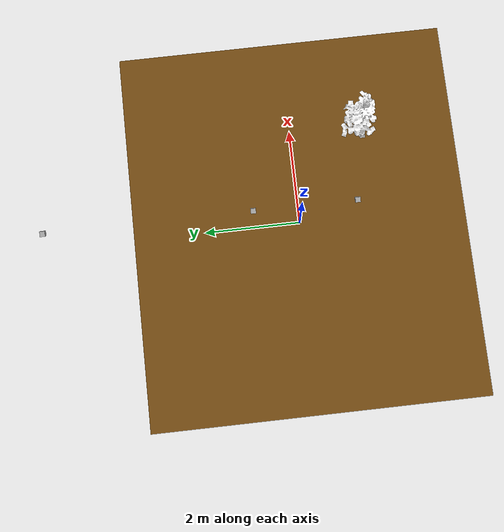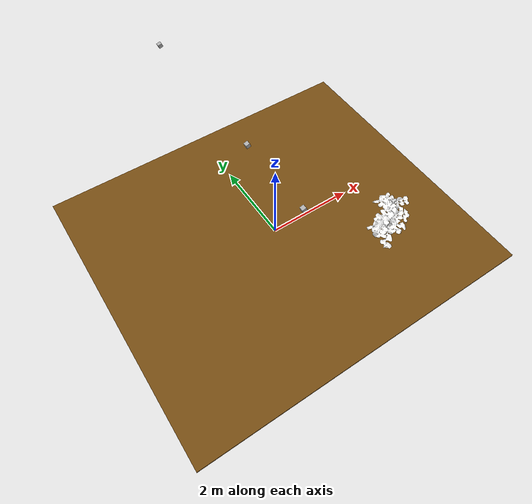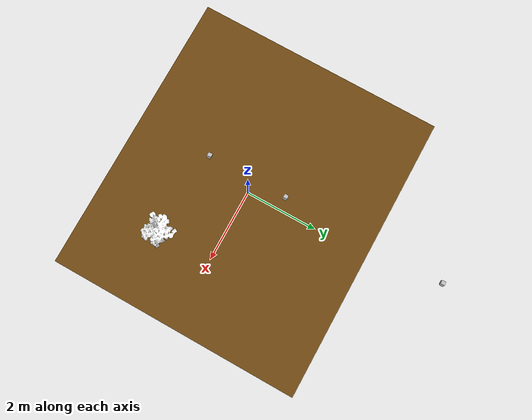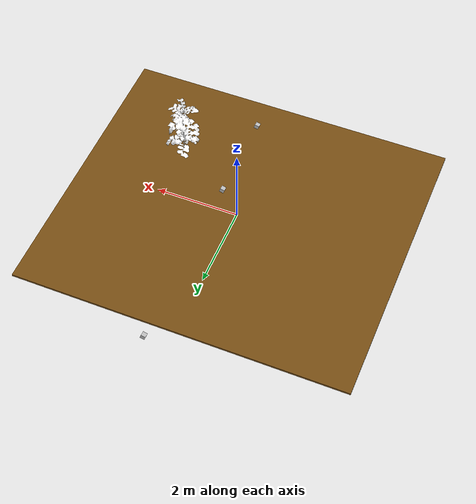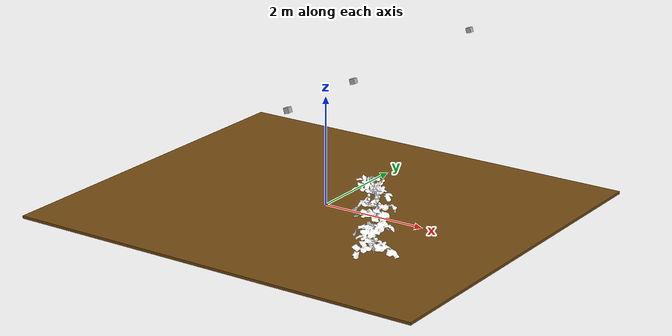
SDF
<sdf version="1.7">
 <world name="field">
  <physics name="1ms" type="ignored">
   <max_step_size>0.001</max_step_size>
   <real_time_factor>1.0</real_time_factor>
  </physics>
  <plugin filename="gz-sim-physics-system" name="gz::sim::systems::Physics"/>
  <plugin filename="gz-sim-sensors-system" name="gz::sim::systems::Sensors">
   <render_engine>ogre2</render_engine>
  </plugin>
  <plugin filename="gz-sim-user-commands-system" name="gz::sim::systems::UserCommands"/>
  <plugin filename="gz-sim-scene-broadcaster-system" name="gz::sim::systems::SceneBroadcaster"/>
  <light type="directional" name="sun">
   <pose>0 0 10 0 0 0</pose>
   <diffuse>0.8 0.8 0.8 1</diffuse>
   <specular>0.2 0.2 0.2 1</specular>
   <attenuation>
    <range>1000</range>
    <constant>0.9</constant>
    <linear>0.01</linear>
    <quadratic>0.001</quadratic>
   </attenuation>
   <direction>-0.5 0.1 -0.9</direction>
  </light>
  <model name="cameras_alone">
   <pose>0 1.0 2.0 0.0 0.3 3.14</pose>
   <link name="link">
    <pose>0.05 0.05 0.05 0 0 0</pose>
    <inertial>
     <mass>0.1</mass>
     <inertia><ixx>0.000166667</ixx><iyy>0.000166667</iyy><izz>0.000166667</izz></inertia>
    </inertial>
    <collision name="collision"><geometry><box><size>0.1 0.1 0.1</size></box></geometry></collision>
    <visual name="visual"><geometry><box><size>0.1 0.1 0.1</size></box></geometry></visual>
    <sensor name="cameras_alone" type="camera">
     <camera>
      <horizontal_fov>1.047</horizontal_fov>
      <image><width>320</width><height>240</height></image>
      <clip><near>0.1</near><far>100</far></clip>
     </camera>
     <always_on>1</always_on>
     <update_rate>30</update_rate>
     <visualize>true</visualize>
     <topic>camera_alone</topic>
     <enable_metrics>true</enable_metrics>
    </sensor>
    <sensor name="depth_camera1" type="depth_camera">
     <update_rate>10</update_rate>
     <topic>depth_camera</topic>
     <enable_metrics>true</enable_metrics>
     <camera>
      <horizontal_fov>1.05</horizontal_fov>
      <image><width>320</width><height>240</height><format>R_FLOAT32</format></image>
      <clip><near>0.1</near><far>10.0</far></clip>
     </camera>
    </sensor>
   </link>
   <static>true</static>
  </model>
  <model name="camera_with_lidar">
   <pose>0 -1.0 2.0 0.0 0.3 3.14</pose>
   <link name="link">
    <pose>0.05 0.05 0.05 0 0 0</pose>
    <inertial>
     <mass>0.1</mass>
     <inertia><ixx>0.000166667</ixx><iyy>0.000166667</iyy><izz>0.000166667</izz></inertia>
    </inertial>
    <collision name="collision"><geometry><box><size>0.1 0.1 0.1</size></box></geometry></collision>
    <visual name="visual"><geometry><box><size>0.1 0.1 0.1</size></box></geometry></visual>
    <sensor name="camera" type="camera">
     <camera>
      <horizontal_fov>1.047</horizontal_fov>
      <image><width>320</width><height>240</height></image>
      <clip><near>0.1</near><far>100</far></clip>
     </camera>
     <always_on>1</always_on>
     <update_rate>30</update_rate>
     <visualize>true</visualize>
     <topic>camera</topic>
    </sensor>
    <sensor name="gpu_lidar" type="gpu_lidar">
     <topic>lidar</topic>
     <update_rate>10</update_rate>
     <enable_metrics>true</enable_metrics>
     <ray>
      <scan>
       <horizontal>
        <samples>640</samples>
        <resolution>1</resolution>
        <min_angle>-1.396263</min_angle>
        <max_angle>1.396263</max_angle>
       </horizontal>
       <vertical>
        <samples>1</samples>
        <resolution>0.01</resolution>
        <min_angle>0</min_angle>
        <max_angle>0</max_angle>
       </vertical>
      </scan>
      <range><min>0.08</min><max>10.0</max><resolution>0.01</resolution></range>
     </ray>
     <alwaysOn>1</alwaysOn>
     <visualize>true</visualize>
    </sensor>
   </link>
   <static>true</static>
  </model>
  <model name="rgbd_camera">
   <pose>0 5.0 2.0 0.0 0.3 3.14</pose>
   <link name="link">
    <pose>0.05 0.05 0.05 0 0 0</pose>
    <inertial>
     <mass>0.1</mass>
     <inertia><ixx>0.000166667</ixx><iyy>0.000166667</iyy><izz>0.000166667</izz></inertia>
    </inertial>
    <collision name="collision"><geometry><box><size>0.1 0.1 0.1</size></box></geometry></collision>
    <visual name="visual"><geometry><box><size>0.1 0.1 0.1</size></box></geometry></visual>
    <sensor name="rgbd_camera" type="rgbd_camera">
     <camera>
      <horizontal_fov>1.047</horizontal_fov>
      <image><width>320</width><height>240</height></image>
      <clip><near>0.1</near><far>100</far></clip>
     </camera>
     <always_on>1</always_on>
     <update_rate>30</update_rate>
     <visualize>true</visualize>
     <topic>rgbd_camera</topic>
     <enable_metrics>true</enable_metrics>
    </sensor>
   </link>
  </model>
  <model name="ground_plane">
   <static>true</static>
   <link name="link">
    <collision name="collision"><geometry><box><size>8 7 0.05</size></box></geometry></collision>
    <visual name="visual">
     <geometry><box><size>8 7 0.05</size></box></geometry>
     <material>
      <ambient>0.45 0.29 0.07 1</ambient>
      <diffuse>0.45 0.29 0.07 1</diffuse>
      <specular>0.45 0.29 0.07 1</specular>
     </material>
    </visual>
   </link>
  </model>
  <include><uri>tomato_10</uri><name>tomato_10</name><pose>2.0 -1.5 0 0 0 0</pose></include>
 </world>
</sdf>

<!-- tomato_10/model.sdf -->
<sdf version="1.6">
  <model name="tomato_10">
    <static>true</static>
    <link name="link">
      <collision name="collision">
        <geometry>
          <box>
            <size>.1 .1 1</size>
          </box>
        </geometry>
      </collision>
      <visual name="branch">
        <geometry>
          <mesh>
            <uri>model://tomato_10/meshes/tomato.dae</uri>
            <submesh>
              <name>Branch1</name>
            </submesh>
          </mesh>
        </geometry>
        <material>
          <diffuse>1.0 1.0 1.0</diffuse>
          <script>
            <uri>model://tomato_10/materials/scripts/</uri>
            <uri>model://tomato_10/materials/textures/</uri>
            <name>branch</name>
          </script>
          <pbr>
            <metal>
              <albedo_map>model://tomato_10/materials/textures/AG15brn1.png</albedo_map>
            </metal>
          </pbr>
        </material>
      </visual>
      <visual name="leaf1">
        <geometry>
          <mesh>
            <uri>model://tomato_10/meshes/tomato.dae</uri>
            <submesh>
              <name>Leaf1</name>
            </submesh>
          </mesh>
        </geometry>
        <material>
          <diffuse>1.0 1.0 1.0</diffuse>
          <script>
            <uri>model://tomato_10/materials/scripts/</uri>
            <uri>model://tomato_10/materials/textures/</uri>
            <name>leaf1</name>
          </script>
          <pbr>
            <metal>
              <albedo_map>model://tomato_10/materials/textures/AG15lef1.png</albedo_map>
            </metal>
          </pbr>
        </material>
      </visual>
      <visual name="leaf2">
        <geometry>
          <mesh>
            <uri>model://tomato_10/meshes/tomato.dae</uri>
            <submesh>
              <name>Leaf2</name>
            </submesh>
          </mesh>
        </geometry>
        <material>
          <diffuse>1.0 1.0 1.0</diffuse>
          <script>
            <uri>model://tomato_10/materials/scripts/</uri>
            <uri>model://tomato_10/materials/textures/</uri>
            <name>leaf2</name>
          </script>
          <pbr>
            <metal>
              <albedo_map>model://tomato_10/materials/textures/AG15lef2.png</albedo_map>
            </metal>
          </pbr>
        </material>
      </visual>
      <visual name="fruit1">
        <geometry>
          <mesh>
            <uri>model://tomato_10/meshes/tomato.dae</uri>
            <submesh>
              <name>Fruit1</name>
            </submesh>
          </mesh>
        </geometry>
        <material>
          <diffuse>1.0 1.0 1.0</diffuse>
          <script>
            <uri>model://tomato_10/materials/scripts/</uri>
            <uri>model://tomato_10/materials/textures/</uri>
            <name>fruit1</name>
          </script>
          <pbr>
            <metal>
              <albedo_map>model://tomato_10/materials/textures/AG15frt1.png</albedo_map>
            </metal>
          </pbr>
        </material>
      </visual>
      <visual name="fruit2">
        <geometry>
          <mesh>
            <uri>model://tomato_10/meshes/tomato.dae</uri>
            <submesh>
              <name>Fruit2</name>
            </submesh>
          </mesh>
        </geometry>
        <material>
          <diffuse>1.0 1.0 1.0</diffuse>
          <script>
            <uri>model://tomato_10/materials/scripts/</uri>
            <uri>model://tomato_10/materials/textures/</uri>
            <name>fruit2</name>
          </script>
          <pbr>
            <metal>
              <albedo_map>model://tomato_10/materials/textures/AG15frt2.png</albedo_map>
            </metal>
          </pbr>
        </material>
      </visual>
      <visual name="fruit3">
        <geometry>
          <mesh>
            <uri>model://tomato_10/meshes/tomato.dae</uri>
            <submesh>
              <name>Fruit3</name>
            </submesh>
          </mesh>
        </geometry>
        <material>
          <diffuse>1.0 1.0 1.0</diffuse>
          <script>
            <uri>model://tomato_10/materials/scripts/</uri>
            <uri>model://tomato_10/materials/textures/</uri>
            <name>fruit3</name>
          </script>
          <pbr>
            <metal>
              <albedo_map>model://tomato_10/materials/textures/AG15frt3.png</albedo_map>
            </metal>
          </pbr>
        </material>
      </visual>
      <visual name="fruit4">
        <geometry>
          <mesh>
            <uri>model://tomato_10/meshes/tomato.dae</uri>
            <submesh>
              <name>Fruit4</name>
            </submesh>
          </mesh>
        </geometry>
        <material>
          <diffuse>1.0 1.0 1.0</diffuse>
          <script>
            <uri>model://tomato_10/materials/scripts/</uri>
            <uri>model://tomato_10/materials/textures/</uri>
            <name>fruit4</name>
          </script>
          <pbr>
            <metal>
              <albedo_map>model://tomato_10/materials/textures/AG15frt4.png</albedo_map>
            </metal>
          </pbr>
        </material>
      </visual>
      <visual name="blossom1">
        <geometry>
          <mesh>
            <uri>model://tomato_10/meshes/tomato.dae</uri>
            <submesh>
              <name>Blossom1</name>
            </submesh>
          </mesh>
        </geometry>
        <material>
          <diffuse>1.0 1.0 1.0</diffuse>
          <script>
            <uri>model://tomato_10/materials/scripts/</uri>
            <uri>model://tomato_10/materials/textures/</uri>
            <name>blossom1</name>
          </script>
          <pbr>
            <metal>
              <albedo_map>model://tomato_10/materials/textures/AG15blo1.png</albedo_map>
            </metal>
          </pbr>
        </material>
      </visual>
      <visual name="blossom2">
        <geometry>
          <mesh>
            <uri>model://tomato_10/meshes/tomato.dae</uri>
            <submesh>
              <name>Blossom2</name>
            </submesh>
          </mesh>
        </geometry>
        <material>
          <diffuse>1.0 1.0 1.0</diffuse>
          <script>
            <uri>model://tomato_10/materials/scripts/</uri>
            <uri>model://tomato_10/materials/textures/</uri>
            <name>blossom2</name>
          </script>
          <pbr>
            <metal>
              <albedo_map>model://tomato_10/materials/textures/AG15blo2.png</albedo_map>
            </metal>
          </pbr>
        </material>
      </visual>
      <visual name="blossom3">
        <geometry>
          <mesh>
            <uri>model://tomato_10/meshes/tomato.dae</uri>
            <submesh>
              <name>Blossom3</name>
            </submesh>
          </mesh>
        </geometry>
        <material>
          <diffuse>1.0 1.0 1.0</diffuse>
          <script>
            <uri>model://tomato_10/materials/scripts/</uri>
            <uri>model://tomato_10/materials/textures/</uri>
            <name>blossom3</name>
          </script>
          <pbr>
            <metal>
              <albedo_map>model://tomato_10/materials/textures/AG15blo3.png</albedo_map>
            </metal>
          </pbr>
        </material>
      </visual>
    </link>
  </model>
</sdf>
